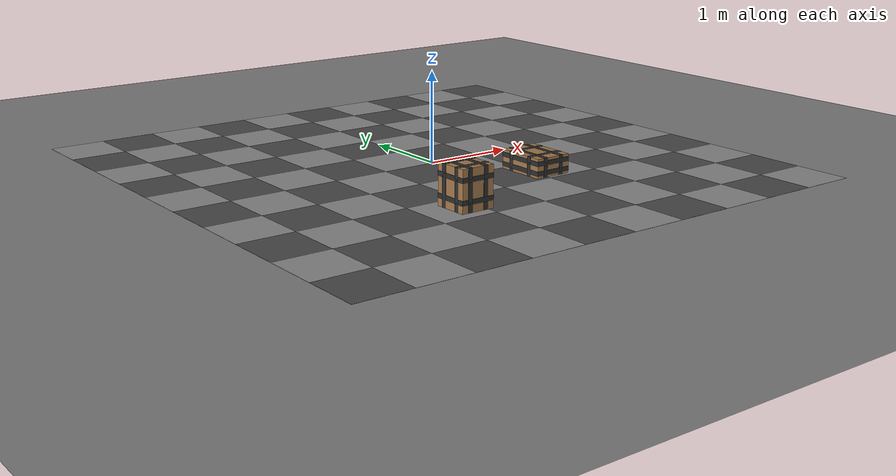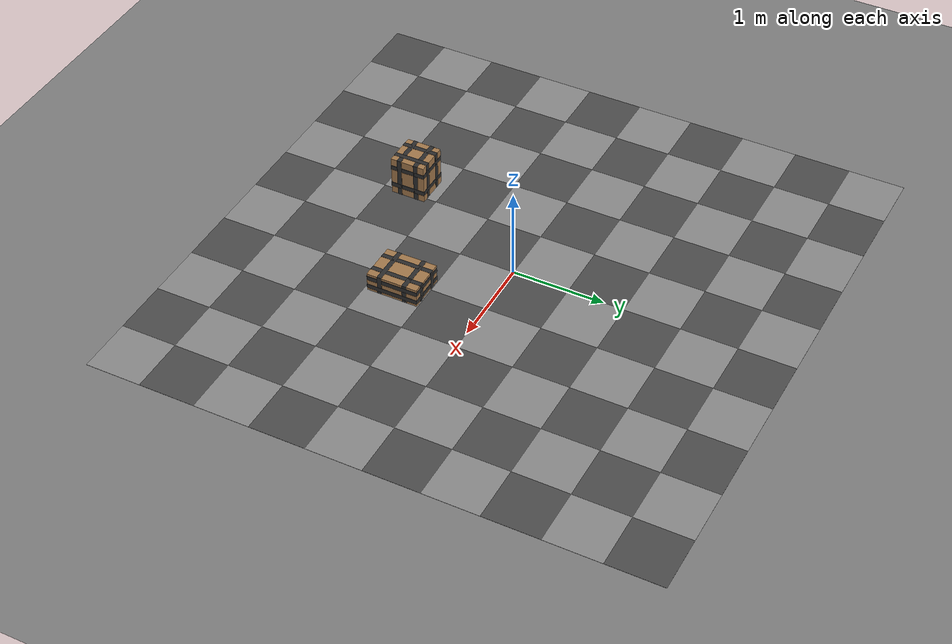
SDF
<sdf version="1.9">
 <world name="ecps295_lowbox_s21_monitor">
  <model name="ground_plane">
   <static>true</static>
   <link name="link">
    <collision name="collision">
     <geometry><plane><normal>0 0 1</normal><size>50 50</size></plane></geometry>
    </collision>
    <visual name="visual">
     <geometry><plane><normal>0 0 1</normal><size>50 50</size></plane></geometry>
     <material><ambient>0.5 0.5 0.5 1</ambient><diffuse>0.5 0.5 0.5 1</diffuse></material>
    </visual>
   </link>
  </model>
  <model name="eva_mat">
   <static>true</static>
   <link name="link">
    <visual name="t0_0">
     <pose>-2.745 -2.745 0.001 0 0 0</pose>
     <geometry><box><size>0.61 0.61 0.002</size></box></geometry>
     <material><ambient>0.3 0.3 0.3 1</ambient><diffuse>0.3 0.3 0.3 1</diffuse></material>
    </visual>
    <visual name="t0_1">
     <pose>-2.745 -2.135 0.001 0 0 0</pose>
     <geometry><box><size>0.61 0.61 0.002</size></box></geometry>
     <material><ambient>0.55 0.55 0.55 1</ambient><diffuse>0.55 0.55 0.55 1</diffuse></material>
    </visual>
    <visual name="t0_2">
     <pose>-2.745 -1.525 0.001 0 0 0</pose>
     <geometry><box><size>0.61 0.61 0.002</size></box></geometry>
     <material><ambient>0.3 0.3 0.3 1</ambient><diffuse>0.3 0.3 0.3 1</diffuse></material>
    </visual>
    <visual name="t0_3">
     <pose>-2.745 -0.915 0.001 0 0 0</pose>
     <geometry><box><size>0.61 0.61 0.002</size></box></geometry>
     <material><ambient>0.55 0.55 0.55 1</ambient><diffuse>0.55 0.55 0.55 1</diffuse></material>
    </visual>
    <visual name="t0_4">
     <pose>-2.745 -0.305 0.001 0 0 0</pose>
     <geometry><box><size>0.61 0.61 0.002</size></box></geometry>
     <material><ambient>0.3 0.3 0.3 1</ambient><diffuse>0.3 0.3 0.3 1</diffuse></material>
    </visual>
    <visual name="t0_5">
     <pose>-2.745 0.305 0.001 0 0 0</pose>
     <geometry><box><size>0.61 0.61 0.002</size></box></geometry>
     <material><ambient>0.55 0.55 0.55 1</ambient><diffuse>0.55 0.55 0.55 1</diffuse></material>
    </visual>
    <visual name="t0_6">
     <pose>-2.745 0.915 0.001 0 0 0</pose>
     <geometry><box><size>0.61 0.61 0.002</size></box></geometry>
     <material><ambient>0.3 0.3 0.3 1</ambient><diffuse>0.3 0.3 0.3 1</diffuse></material>
    </visual>
    <visual name="t0_7">
     <pose>-2.745 1.525 0.001 0 0 0</pose>
     <geometry><box><size>0.61 0.61 0.002</size></box></geometry>
     <material><ambient>0.55 0.55 0.55 1</ambient><diffuse>0.55 0.55 0.55 1</diffuse></material>
    </visual>
    <visual name="t0_8">
     <pose>-2.745 2.135 0.001 0 0 0</pose>
     <geometry><box><size>0.61 0.61 0.002</size></box></geometry>
     <material><ambient>0.3 0.3 0.3 1</ambient><diffuse>0.3 0.3 0.3 1</diffuse></material>
    </visual>
    <visual name="t0_9">
     <pose>-2.745 2.745 0.001 0 0 0</pose>
     <geometry><box><size>0.61 0.61 0.002</size></box></geometry>
     <material><ambient>0.55 0.55 0.55 1</ambient><diffuse>0.55 0.55 0.55 1</diffuse></material>
    </visual>
    <visual name="t1_0">
     <pose>-2.135 -2.745 0.001 0 0 0</pose>
     <geometry><box><size>0.61 0.61 0.002</size></box></geometry>
     <material><ambient>0.55 0.55 0.55 1</ambient><diffuse>0.55 0.55 0.55 1</diffuse></material>
    </visual>
    <visual name="t1_1">
     <pose>-2.135 -2.135 0.001 0 0 0</pose>
     <geometry><box><size>0.61 0.61 0.002</size></box></geometry>
     <material><ambient>0.3 0.3 0.3 1</ambient><diffuse>0.3 0.3 0.3 1</diffuse></material>
    </visual>
    <visual name="t1_2">
     <pose>-2.135 -1.525 0.001 0 0 0</pose>
     <geometry><box><size>0.61 0.61 0.002</size></box></geometry>
     <material><ambient>0.55 0.55 0.55 1</ambient><diffuse>0.55 0.55 0.55 1</diffuse></material>
    </visual>
    <visual name="t1_3">
     <pose>-2.135 -0.915 0.001 0 0 0</pose>
     <geometry><box><size>0.61 0.61 0.002</size></box></geometry>
     <material><ambient>0.3 0.3 0.3 1</ambient><diffuse>0.3 0.3 0.3 1</diffuse></material>
    </visual>
    <visual name="t1_4">
     <pose>-2.135 -0.305 0.001 0 0 0</pose>
     <geometry><box><size>0.61 0.61 0.002</size></box></geometry>
     <material><ambient>0.55 0.55 0.55 1</ambient><diffuse>0.55 0.55 0.55 1</diffuse></material>
    </visual>
    <visual name="t1_5">
     <pose>-2.135 0.305 0.001 0 0 0</pose>
     <geometry><box><size>0.61 0.61 0.002</size></box></geometry>
     <material><ambient>0.3 0.3 0.3 1</ambient><diffuse>0.3 0.3 0.3 1</diffuse></material>
    </visual>
    <visual name="t1_6">
     <pose>-2.135 0.915 0.001 0 0 0</pose>
     <geometry><box><size>0.61 0.61 0.002</size></box></geometry>
     <material><ambient>0.55 0.55 0.55 1</ambient><diffuse>0.55 0.55 0.55 1</diffuse></material>
    </visual>
    <visual name="t1_7">
     <pose>-2.135 1.525 0.001 0 0 0</pose>
     <geometry><box><size>0.61 0.61 0.002</size></box></geometry>
     <material><ambient>0.3 0.3 0.3 1</ambient><diffuse>0.3 0.3 0.3 1</diffuse></material>
    </visual>
    <visual name="t1_8">
     <pose>-2.135 2.135 0.001 0 0 0</pose>
     <geometry><box><size>0.61 0.61 0.002</size></box></geometry>
     <material><ambient>0.55 0.55 0.55 1</ambient><diffuse>0.55 0.55 0.55 1</diffuse></material>
    </visual>
    <visual name="t1_9">
     <pose>-2.135 2.745 0.001 0 0 0</pose>
     <geometry><box><size>0.61 0.61 0.002</size></box></geometry>
     <material><ambient>0.3 0.3 0.3 1</ambient><diffuse>0.3 0.3 0.3 1</diffuse></material>
    </visual>
    <visual name="t2_0">
     <pose>-1.525 -2.745 0.001 0 0 0</pose>
     <geometry><box><size>0.61 0.61 0.002</size></box></geometry>
     <material><ambient>0.3 0.3 0.3 1</ambient><diffuse>0.3 0.3 0.3 1</diffuse></material>
    </visual>
    <visual name="t2_1">
     <pose>-1.525 -2.135 0.001 0 0 0</pose>
     <geometry><box><size>0.61 0.61 0.002</size></box></geometry>
     <material><ambient>0.55 0.55 0.55 1</ambient><diffuse>0.55 0.55 0.55 1</diffuse></material>
    </visual>
    <visual name="t2_2">
     <pose>-1.525 -1.525 0.001 0 0 0</pose>
     <geometry><box><size>0.61 0.61 0.002</size></box></geometry>
     <material><ambient>0.3 0.3 0.3 1</ambient><diffuse>0.3 0.3 0.3 1</diffuse></material>
    </visual>
    <visual name="t2_3">
     <pose>-1.525 -0.915 0.001 0 0 0</pose>
     <geometry><box><size>0.61 0.61 0.002</size></box></geometry>
     <material><ambient>0.55 0.55 0.55 1</ambient><diffuse>0.55 0.55 0.55 1</diffuse></material>
    </visual>
    <visual name="t2_4">
     <pose>-1.525 -0.305 0.001 0 0 0</pose>
     <geometry><box><size>0.61 0.61 0.002</size></box></geometry>
     <material><ambient>0.3 0.3 0.3 1</ambient><diffuse>0.3 0.3 0.3 1</diffuse></material>
    </visual>
    <visual name="t2_5">
     <pose>-1.525 0.305 0.001 0 0 0</pose>
     <geometry><box><size>0.61 0.61 0.002</size></box></geometry>
     <material><ambient>0.55 0.55 0.55 1</ambient><diffuse>0.55 0.55 0.55 1</diffuse></material>
    </visual>
    <visual name="t2_6">
     <pose>-1.525 0.915 0.001 0 0 0</pose>
     <geometry><box><size>0.61 0.61 0.002</size></box></geometry>
     <material><ambient>0.3 0.3 0.3 1</ambient><diffuse>0.3 0.3 0.3 1</diffuse></material>
    </visual>
    <visual name="t2_7">
     <pose>-1.525 1.525 0.001 0 0 0</pose>
     <geometry><box><size>0.61 0.61 0.002</size></box></geometry>
     <material><ambient>0.55 0.55 0.55 1</ambient><diffuse>0.55 0.55 0.55 1</diffuse></material>
    </visual>
    <visual name="t2_8">
     <pose>-1.525 2.135 0.001 0 0 0</pose>
     <geometry><box><size>0.61 0.61 0.002</size></box></geometry>
     <material><ambient>0.3 0.3 0.3 1</ambient><diffuse>0.3 0.3 0.3 1</diffuse></material>
    </visual>
    <visual name="t2_9">
     <pose>-1.525 2.745 0.001 0 0 0</pose>
     <geometry><box><size>0.61 0.61 0.002</size></box></geometry>
     <material><ambient>0.55 0.55 0.55 1</ambient><diffuse>0.55 0.55 0.55 1</diffuse></material>
    </visual>
    <visual name="t3_0">
     <pose>-0.915 -2.745 0.001 0 0 0</pose>
     <geometry><box><size>0.61 0.61 0.002</size></box></geometry>
     <material><ambient>0.55 0.55 0.55 1</ambient><diffuse>0.55 0.55 0.55 1</diffuse></material>
    </visual>
    <visual name="t3_1">
     <pose>-0.915 -2.135 0.001 0 0 0</pose>
     <geometry><box><size>0.61 0.61 0.002</size></box></geometry>
     <material><ambient>0.3 0.3 0.3 1</ambient><diffuse>0.3 0.3 0.3 1</diffuse></material>
    </visual>
    <visual name="t3_2">
     <pose>-0.915 -1.525 0.001 0 0 0</pose>
     <geometry><box><size>0.61 0.61 0.002</size></box></geometry>
     <material><ambient>0.55 0.55 0.55 1</ambient><diffuse>0.55 0.55 0.55 1</diffuse></material>
    </visual>
    <visual name="t3_3">
     <pose>-0.915 -0.915 0.001 0 0 0</pose>
     <geometry><box><size>0.61 0.61 0.002</size></box></geometry>
     <material><ambient>0.3 0.3 0.3 1</ambient><diffuse>0.3 0.3 0.3 1</diffuse></material>
    </visual>
    <visual name="t3_4">
     <pose>-0.915 -0.305 0.001 0 0 0</pose>
     <geometry><box><size>0.61 0.61 0.002</size></box></geometry>
     <material><ambient>0.55 0.55 0.55 1</ambient><diffuse>0.55 0.55 0.55 1</diffuse></material>
    </visual>
    <visual name="t3_5">
     <pose>-0.915 0.305 0.001 0 0 0</pose>
     <geometry><box><size>0.61 0.61 0.002</size></box></geometry>
     <material><ambient>0.3 0.3 0.3 1</ambient><diffuse>0.3 0.3 0.3 1</diffuse></material>
    </visual>
    <visual name="t3_6">
     <pose>-0.915 0.915 0.001 0 0 0</pose>
     <geometry><box><size>0.61 0.61 0.002</size></box></geometry>
     <material><ambient>0.55 0.55 0.55 1</ambient><diffuse>0.55 0.55 0.55 1</diffuse></material>
    </visual>
    <visual name="t3_7">
     <pose>-0.915 1.525 0.001 0 0 0</pose>
     <geometry><box><size>0.61 0.61 0.002</size></box></geometry>
     <material><ambient>0.3 0.3 0.3 1</ambient><diffuse>0.3 0.3 0.3 1</diffuse></material>
    </visual>
    <visual name="t3_8">
     <pose>-0.915 2.135 0.001 0 0 0</pose>
     <geometry><box><size>0.61 0.61 0.002</size></box></geometry>
     <material><ambient>0.55 0.55 0.55 1</ambient><diffuse>0.55 0.55 0.55 1</diffuse></material>
    </visual>
    <visual name="t3_9">
     <pose>-0.915 2.745 0.001 0 0 0</pose>
     <geometry><box><size>0.61 0.61 0.002</size></box></geometry>
     <material><ambient>0.3 0.3 0.3 1</ambient><diffuse>0.3 0.3 0.3 1</diffuse></material>
    </visual>
    <visual name="t4_0">
     <pose>-0.305 -2.745 0.001 0 0 0</pose>
     <geometry><box><size>0.61 0.61 0.002</size></box></geometry>
     <material><ambient>0.3 0.3 0.3 1</ambient><diffuse>0.3 0.3 0.3 1</diffuse></material>
    </visual>
    <visual name="t4_1">
     <pose>-0.305 -2.135 0.001 0 0 0</pose>
     <geometry><box><size>0.61 0.61 0.002</size></box></geometry>
     <material><ambient>0.55 0.55 0.55 1</ambient><diffuse>0.55 0.55 0.55 1</diffuse></material>
    </visual>
    <visual name="t4_2">
     <pose>-0.305 -1.525 0.001 0 0 0</pose>
     <geometry><box><size>0.61 0.61 0.002</size></box></geometry>
     <material><ambient>0.3 0.3 0.3 1</ambient><diffuse>0.3 0.3 0.3 1</diffuse></material>
    </visual>
    <visual name="t4_3">
     <pose>-0.305 -0.915 0.001 0 0 0</pose>
     <geometry><box><size>0.61 0.61 0.002</size></box></geometry>
     <material><ambient>0.55 0.55 0.55 1</ambient><diffuse>0.55 0.55 0.55 1</diffuse></material>
    </visual>
    <visual name="t4_4">
     <pose>-0.305 -0.305 0.001 0 0 0</pose>
     <geometry><box><size>0.61 0.61 0.002</size></box></geometry>
     <material><ambient>0.3 0.3 0.3 1</ambient><diffuse>0.3 0.3 0.3 1</diffuse></material>
    </visual>
    <visual name="t4_5">
     <pose>-0.305 0.305 0.001 0 0 0</pose>
     <geometry><box><size>0.61 0.61 0.002</size></box></geometry>
     <material><ambient>0.55 0.55 0.55 1</ambient><diffuse>0.55 0.55 0.55 1</diffuse></material>
    </visual>
    <visual name="t4_6">
     <pose>-0.305 0.915 0.001 0 0 0</pose>
     <geometry><box><size>0.61 0.61 0.002</size></box></geometry>
     <material><ambient>0.3 0.3 0.3 1</ambient><diffuse>0.3 0.3 0.3 1</diffuse></material>
    </visual>
    <visual name="t4_7">
     <pose>-0.305 1.525 0.001 0 0 0</pose>
     <geometry><box><size>0.61 0.61 0.002</size></box></geometry>
     <material><ambient>0.55 0.55 0.55 1</ambient><diffuse>0.55 0.55 0.55 1</diffuse></material>
    </visual>
    <visual name="t4_8">
     <pose>-0.305 2.135 0.001 0 0 0</pose>
     <geometry><box><size>0.61 0.61 0.002</size></box></geometry>
     <material><ambient>0.3 0.3 0.3 1</ambient><diffuse>0.3 0.3 0.3 1</diffuse></material>
    </visual>
    <visual name="t4_9">
     <pose>-0.305 2.745 0.001 0 0 0</pose>
     <geometry><box><size>0.61 0.61 0.002</size></box></geometry>
     <material><ambient>0.55 0.55 0.55 1</ambient><diffuse>0.55 0.55 0.55 1</diffuse></material>
    </visual>
    <visual name="t5_0">
     <pose>0.305 -2.745 0.001 0 0 0</pose>
     <geometry><box><size>0.61 0.61 0.002</size></box></geometry>
     <material><ambient>0.55 0.55 0.55 1</ambient><diffuse>0.55 0.55 0.55 1</diffuse></material>
    </visual>
    <visual name="t5_1">
     <pose>0.305 -2.135 0.001 0 0 0</pose>
     <geometry><box><size>0.61 0.61 0.002</size></box></geometry>
     <material><ambient>0.3 0.3 0.3 1</ambient><diffuse>0.3 0.3 0.3 1</diffuse></material>
    </visual>
    <visual name="t5_2">
     <pose>0.305 -1.525 0.001 0 0 0</pose>
     <geometry><box><size>0.61 0.61 0.002</size></box></geometry>
     <material><ambient>0.55 0.55 0.55 1</ambient><diffuse>0.55 0.55 0.55 1</diffuse></material>
    </visual>
    <visual name="t5_3">
     <pose>0.305 -0.915 0.001 0 0 0</pose>
     <geometry><box><size>0.61 0.61 0.002</size></box></geometry>
     <material><ambient>0.3 0.3 0.3 1</ambient><diffuse>0.3 0.3 0.3 1</diffuse></material>
    </visual>
    <visual name="t5_4">
     <pose>0.305 -0.305 0.001 0 0 0</pose>
     <geometry><box><size>0.61 0.61 0.002</size></box></geometry>
     <material><ambient>0.55 0.55 0.55 1</ambient><diffuse>0.55 0.55 0.55 1</diffuse></material>
    </visual>
    <visual name="t5_5">
     <pose>0.305 0.305 0.001 0 0 0</pose>
     <geometry><box><size>0.61 0.61 0.002</size></box></geometry>
     <material><ambient>0.3 0.3 0.3 1</ambient><diffuse>0.3 0.3 0.3 1</diffuse></material>
    </visual>
    <visual name="t5_6">
     <pose>0.305 0.915 0.001 0 0 0</pose>
     <geometry><box><size>0.61 0.61 0.002</size></box></geometry>
     <material><ambient>0.55 0.55 0.55 1</ambient><diffuse>0.55 0.55 0.55 1</diffuse></material>
    </visual>
    <visual name="t5_7">
     <pose>0.305 1.525 0.001 0 0 0</pose>
     <geometry><box><size>0.61 0.61 0.002</size></box></geometry>
     <material><ambient>0.3 0.3 0.3 1</ambient><diffuse>0.3 0.3 0.3 1</diffuse></material>
    </visual>
    <visual name="t5_8">
     <pose>0.305 2.135 0.001 0 0 0</pose>
     <geometry><box><size>0.61 0.61 0.002</size></box></geometry>
     <material><ambient>0.55 0.55 0.55 1</ambient><diffuse>0.55 0.55 0.55 1</diffuse></material>
    </visual>
    <visual name="t5_9">
     <pose>0.305 2.745 0.001 0 0 0</pose>
     <geometry><box><size>0.61 0.61 0.002</size></box></geometry>
     <material><ambient>0.3 0.3 0.3 1</ambient><diffuse>0.3 0.3 0.3 1</diffuse></material>
    </visual>
    <visual name="t6_0">
     <pose>0.915 -2.745 0.001 0 0 0</pose>
     <geometry><box><size>0.61 0.61 0.002</size></box></geometry>
     <material><ambient>0.3 0.3 0.3 1</ambient><diffuse>0.3 0.3 0.3 1</diffuse></material>
    </visual>
    <visual name="t6_1">
     <pose>0.915 -2.135 0.001 0 0 0</pose>
     <geometry><box><size>0.61 0.61 0.002</size></box></geometry>
     <material><ambient>0.55 0.55 0.55 1</ambient><diffuse>0.55 0.55 0.55 1</diffuse></material>
    </visual>
    <visual name="t6_2">
     <pose>0.915 -1.525 0.001 0 0 0</pose>
     <geometry><box><size>0.61 0.61 0.002</size></box></geometry>
     <material><ambient>0.3 0.3 0.3 1</ambient><diffuse>0.3 0.3 0.3 1</diffuse></material>
    </visual>
    <visual name="t6_3">
     <pose>0.915 -0.915 0.001 0 0 0</pose>
     <geometry><box><size>0.61 0.61 0.002</size></box></geometry>
     <material><ambient>0.55 0.55 0.55 1</ambient><diffuse>0.55 0.55 0.55 1</diffuse></material>
    </visual>
    <visual name="t6_4">
     <pose>0.915 -0.305 0.001 0 0 0</pose>
     <geometry><box><size>0.61 0.61 0.002</size></box></geometry>
     <material><ambient>0.3 0.3 0.3 1</ambient><diffuse>0.3 0.3 0.3 1</diffuse></material>
    </visual>
    <visual name="t6_5">
     <pose>0.915 0.305 0.001 0 0 0</pose>
     <geometry><box><size>0.61 0.61 0.002</size></box></geometry>
     <material><ambient>0.55 0.55 0.55 1</ambient><diffuse>0.55 0.55 0.55 1</diffuse></material>
    </visual>
    <visual name="t6_6">
     <pose>0.915 0.915 0.001 0 0 0</pose>
     <geometry><box><size>0.61 0.61 0.002</size></box></geometry>
     <material><ambient>0.3 0.3 0.3 1</ambient><diffuse>0.3 0.3 0.3 1</diffuse></material>
    </visual>
    <visual name="t6_7">
     <pose>0.915 1.525 0.001 0 0 0</pose>
     <geometry><box><size>0.61 0.61 0.002</size></box></geometry>
     <material><ambient>0.55 0.55 0.55 1</ambient><diffuse>0.55 0.55 0.55 1</diffuse></material>
    </visual>
    <visual name="t6_8">
     <pose>0.915 2.135 0.001 0 0 0</pose>
     <geometry><box><size>0.61 0.61 0.002</size></box></geometry>
     <material><ambient>0.3 0.3 0.3 1</ambient><diffuse>0.3 0.3 0.3 1</diffuse></material>
    </visual>
    <visual name="t6_9">
     <pose>0.915 2.745 0.001 0 0 0</pose>
     <geometry><box><size>0.61 0.61 0.002</size></box></geometry>
     <material><ambient>0.55 0.55 0.55 1</ambient><diffuse>0.55 0.55 0.55 1</diffuse></material>
    </visual>
    <visual name="t7_0">
     <pose>1.525 -2.745 0.001 0 0 0</pose>
     <geometry><box><size>0.61 0.61 0.002</size></box></geometry>
     <material><ambient>0.55 0.55 0.55 1</ambient><diffuse>0.55 0.55 0.55 1</diffuse></material>
    </visual>
    <visual name="t7_1">
     <pose>1.525 -2.135 0.001 0 0 0</pose>
     <geometry><box><size>0.61 0.61 0.002</size></box></geometry>
     <material><ambient>0.3 0.3 0.3 1</ambient><diffuse>0.3 0.3 0.3 1</diffuse></material>
    </visual>
    <visual name="t7_2">
     <pose>1.525 -1.525 0.001 0 0 0</pose>
     <geometry><box><size>0.61 0.61 0.002</size></box></geometry>
     <material><ambient>0.55 0.55 0.55 1</ambient><diffuse>0.55 0.55 0.55 1</diffuse></material>
    </visual>
    <visual name="t7_3">
     <pose>1.525 -0.915 0.001 0 0 0</pose>
     <geometry><box><size>0.61 0.61 0.002</size></box></geometry>
     <material><ambient>0.3 0.3 0.3 1</ambient><diffuse>0.3 0.3 0.3 1</diffuse></material>
    </visual>
    <visual name="t7_4">
     <pose>1.525 -0.305 0.001 0 0 0</pose>
     <geometry><box><size>0.61 0.61 0.002</size></box></geometry>
     <material><ambient>0.55 0.55 0.55 1</ambient><diffuse>0.55 0.55 0.55 1</diffuse></material>
    </visual>
    <visual name="t7_5">
     <pose>1.525 0.305 0.001 0 0 0</pose>
     <geometry><box><size>0.61 0.61 0.002</size></box></geometry>
     <material><ambient>0.3 0.3 0.3 1</ambient><diffuse>0.3 0.3 0.3 1</diffuse></material>
    </visual>
    <visual name="t7_6">
     <pose>1.525 0.915 0.001 0 0 0</pose>
     <geometry><box><size>0.61 0.61 0.002</size></box></geometry>
     <material><ambient>0.55 0.55 0.55 1</ambient><diffuse>0.55 0.55 0.55 1</diffuse></material>
    </visual>
    <visual name="t7_7">
     <pose>1.525 1.525 0.001 0 0 0</pose>
     <geometry><box><size>0.61 0.61 0.002</size></box></geometry>
     <material><ambient>0.3 0.3 0.3 1</ambient><diffuse>0.3 0.3 0.3 1</diffuse></material>
    </visual>
    <visual name="t7_8">
     <pose>1.525 2.135 0.001 0 0 0</pose>
     <geometry><box><size>0.61 0.61 0.002</size></box></geometry>
     <material><ambient>0.55 0.55 0.55 1</ambient><diffuse>0.55 0.55 0.55 1</diffuse></material>
    </visual>
    <visual name="t7_9">
     <pose>1.525 2.745 0.001 0 0 0</pose>
     <geometry><box><size>0.61 0.61 0.002</size></box></geometry>
     <material><ambient>0.3 0.3 0.3 1</ambient><diffuse>0.3 0.3 0.3 1</diffuse></material>
    </visual>
    <visual name="t8_0">
     <pose>2.135 -2.745 0.001 0 0 0</pose>
     <geometry><box><size>0.61 0.61 0.002</size></box></geometry>
     <material><ambient>0.3 0.3 0.3 1</ambient><diffuse>0.3 0.3 0.3 1</diffuse></material>
    </visual>
    <visual name="t8_1">
     <pose>2.135 -2.135 0.001 0 0 0</pose>
     <geometry><box><size>0.61 0.61 0.002</size></box></geometry>
     <material><ambient>0.55 0.55 0.55 1</ambient><diffuse>0.55 0.55 0.55 1</diffuse></material>
    </visual>
    <visual name="t8_2">
     <pose>2.135 -1.525 0.001 0 0 0</pose>
     <geometry><box><size>0.61 0.61 0.002</size></box></geometry>
     <material><ambient>0.3 0.3 0.3 1</ambient><diffuse>0.3 0.3 0.3 1</diffuse></material>
    </visual>
    <visual name="t8_3">
     <pose>2.135 -0.915 0.001 0 0 0</pose>
     <geometry><box><size>0.61 0.61 0.002</size></box></geometry>
     <material><ambient>0.55 0.55 0.55 1</ambient><diffuse>0.55 0.55 0.55 1</diffuse></material>
    </visual>
    <visual name="t8_4">
     <pose>2.135 -0.305 0.001 0 0 0</pose>
     <geometry><box><size>0.61 0.61 0.002</size></box></geometry>
     <material><ambient>0.3 0.3 0.3 1</ambient><diffuse>0.3 0.3 0.3 1</diffuse></material>
    </visual>
    <visual name="t8_5">
     <pose>2.135 0.305 0.001 0 0 0</pose>
     <geometry><box><size>0.61 0.61 0.002</size></box></geometry>
     <material><ambient>0.55 0.55 0.55 1</ambient><diffuse>0.55 0.55 0.55 1</diffuse></material>
    </visual>
    <visual name="t8_6">
     <pose>2.135 0.915 0.001 0 0 0</pose>
     <geometry><box><size>0.61 0.61 0.002</size></box></geometry>
     <material><ambient>0.3 0.3 0.3 1</ambient><diffuse>0.3 0.3 0.3 1</diffuse></material>
    </visual>
    <visual name="t8_7">
     <pose>2.135 1.525 0.001 0 0 0</pose>
     <geometry><box><size>0.61 0.61 0.002</size></box></geometry>
     <material><ambient>0.55 0.55 0.55 1</ambient><diffuse>0.55 0.55 0.55 1</diffuse></material>
    </visual>
    <visual name="t8_8">
     <pose>2.135 2.135 0.001 0 0 0</pose>
     <geometry><box><size>0.61 0.61 0.002</size></box></geometry>
     <material><ambient>0.3 0.3 0.3 1</ambient><diffuse>0.3 0.3 0.3 1</diffuse></material>
    </visual>
    <visual name="t8_9">
     <pose>2.135 2.745 0.001 0 0 0</pose>
     <geometry><box><size>0.61 0.61 0.002</size></box></geometry>
     <material><ambient>0.55 0.55 0.55 1</ambient><diffuse>0.55 0.55 0.55 1</diffuse></material>
    </visual>
    <visual name="t9_0">
     <pose>2.745 -2.745 0.001 0 0 0</pose>
     <geometry><box><size>0.61 0.61 0.002</size></box></geometry>
     <material><ambient>0.55 0.55 0.55 1</ambient><diffuse>0.55 0.55 0.55 1</diffuse></material>
    </visual>
    <visual name="t9_1">
     <pose>2.745 -2.135 0.001 0 0 0</pose>
     <geometry><box><size>0.61 0.61 0.002</size></box></geometry>
     <material><ambient>0.3 0.3 0.3 1</ambient><diffuse>0.3 0.3 0.3 1</diffuse></material>
    </visual>
    <visual name="t9_2">
     <pose>2.745 -1.525 0.001 0 0 0</pose>
     <geometry><box><size>0.61 0.61 0.002</size></box></geometry>
     <material><ambient>0.55 0.55 0.55 1</ambient><diffuse>0.55 0.55 0.55 1</diffuse></material>
    </visual>
    <visual name="t9_3">
     <pose>2.745 -0.915 0.001 0 0 0</pose>
     <geometry><box><size>0.61 0.61 0.002</size></box></geometry>
     <material><ambient>0.3 0.3 0.3 1</ambient><diffuse>0.3 0.3 0.3 1</diffuse></material>
    </visual>
    <visual name="t9_4">
     <pose>2.745 -0.305 0.001 0 0 0</pose>
     <geometry><box><size>0.61 0.61 0.002</size></box></geometry>
     <material><ambient>0.55 0.55 0.55 1</ambient><diffuse>0.55 0.55 0.55 1</diffuse></material>
    </visual>
    <visual name="t9_5">
     <pose>2.745 0.305 0.001 0 0 0</pose>
     <geometry><box><size>0.61 0.61 0.002</size></box></geometry>
     <material><ambient>0.3 0.3 0.3 1</ambient><diffuse>0.3 0.3 0.3 1</diffuse></material>
    </visual>
    <visual name="t9_6">
     <pose>2.745 0.915 0.001 0 0 0</pose>
     <geometry><box><size>0.61 0.61 0.002</size></box></geometry>
     <material><ambient>0.55 0.55 0.55 1</ambient><diffuse>0.55 0.55 0.55 1</diffuse></material>
    </visual>
    <visual name="t9_7">
     <pose>2.745 1.525 0.001 0 0 0</pose>
     <geometry><box><size>0.61 0.61 0.002</size></box></geometry>
     <material><ambient>0.3 0.3 0.3 1</ambient><diffuse>0.3 0.3 0.3 1</diffuse></material>
    </visual>
    <visual name="t9_8">
     <pose>2.745 2.135 0.001 0 0 0</pose>
     <geometry><box><size>0.61 0.61 0.002</size></box></geometry>
     <material><ambient>0.55 0.55 0.55 1</ambient><diffuse>0.55 0.55 0.55 1</diffuse></material>
    </visual>
    <visual name="t9_9">
     <pose>2.745 2.745 0.001 0 0 0</pose>
     <geometry><box><size>0.61 0.61 0.002</size></box></geometry>
     <material><ambient>0.3 0.3 0.3 1</ambient><diffuse>0.3 0.3 0.3 1</diffuse></material>
    </visual>
   </link>
  </model>
  <model name="lb0">
   <static>true</static>
   <pose>-0.74 -1.52 0.218 0 0 0</pose>
   <link name="link">
    <collision name="c"><geometry><box><size>0.37 0.38 0.44</size></box></geometry></collision>
    <visual name="v">
     <geometry><box><size>0.37 0.38 0.44</size></box></geometry>
     <material><ambient>0.65 0.48 0.30 1</ambient><diffuse>0.65 0.48 0.30 1</diffuse></material>
    </visual>
    <visual name="tape_ring0">
     <pose>0.000 0.000 -0.110 0 0 0</pose>
     <geometry><box><size>0.374 0.384 0.050</size></box></geometry>
     <material><ambient>0.18 0.18 0.18 1</ambient><diffuse>0.18 0.18 0.18 1</diffuse></material>
    </visual>
    <visual name="tape_bx0">
     <pose>-0.092 0.000 0.000 0 0 0</pose>
     <geometry><box><size>0.050 0.384 0.444</size></box></geometry>
     <material><ambient>0.18 0.18 0.18 1</ambient><diffuse>0.18 0.18 0.18 1</diffuse></material>
    </visual>
    <visual name="tape_by0">
     <pose>0.000 -0.095 0.000 0 0 0</pose>
     <geometry><box><size>0.374 0.050 0.444</size></box></geometry>
     <material><ambient>0.18 0.18 0.18 1</ambient><diffuse>0.18 0.18 0.18 1</diffuse></material>
    </visual>
    <visual name="tape_ring1">
     <pose>0.000 0.000 0.110 0 0 0</pose>
     <geometry><box><size>0.374 0.384 0.050</size></box></geometry>
     <material><ambient>0.18 0.18 0.18 1</ambient><diffuse>0.18 0.18 0.18 1</diffuse></material>
    </visual>
    <visual name="tape_bx1">
     <pose>0.092 0.000 0.000 0 0 0</pose>
     <geometry><box><size>0.050 0.384 0.444</size></box></geometry>
     <material><ambient>0.18 0.18 0.18 1</ambient><diffuse>0.18 0.18 0.18 1</diffuse></material>
    </visual>
    <visual name="tape_by1">
     <pose>0.000 0.095 0.000 0 0 0</pose>
     <geometry><box><size>0.374 0.050 0.444</size></box></geometry>
     <material><ambient>0.18 0.18 0.18 1</ambient><diffuse>0.18 0.18 0.18 1</diffuse></material>
    </visual>
   </link>
  </model>
  <model name="lb2">
   <static>true</static>
   <pose>0.68 -0.9 0.105 0 0 0</pose>
   <link name="link">
    <collision name="c"><geometry><box><size>0.42 0.56 0.21</size></box></geometry></collision>
    <visual name="v">
     <geometry><box><size>0.42 0.56 0.21</size></box></geometry>
     <material><ambient>0.65 0.48 0.30 1</ambient><diffuse>0.65 0.48 0.30 1</diffuse></material>
    </visual>
    <visual name="tape_ring0">
     <pose>0.000 0.000 -0.052 0 0 0</pose>
     <geometry><box><size>0.424 0.564 0.050</size></box></geometry>
     <material><ambient>0.18 0.18 0.18 1</ambient><diffuse>0.18 0.18 0.18 1</diffuse></material>
    </visual>
    <visual name="tape_bx0">
     <pose>-0.105 0.000 0.000 0 0 0</pose>
     <geometry><box><size>0.050 0.564 0.214</size></box></geometry>
     <material><ambient>0.18 0.18 0.18 1</ambient><diffuse>0.18 0.18 0.18 1</diffuse></material>
    </visual>
    <visual name="tape_by0">
     <pose>0.000 -0.140 0.000 0 0 0</pose>
     <geometry><box><size>0.424 0.050 0.214</size></box></geometry>
     <material><ambient>0.18 0.18 0.18 1</ambient><diffuse>0.18 0.18 0.18 1</diffuse></material>
    </visual>
    <visual name="tape_ring1">
     <pose>0.000 0.000 0.052 0 0 0</pose>
     <geometry><box><size>0.424 0.564 0.050</size></box></geometry>
     <material><ambient>0.18 0.18 0.18 1</ambient><diffuse>0.18 0.18 0.18 1</diffuse></material>
    </visual>
    <visual name="tape_bx1">
     <pose>0.105 0.000 0.000 0 0 0</pose>
     <geometry><box><size>0.050 0.564 0.214</size></box></geometry>
     <material><ambient>0.18 0.18 0.18 1</ambient><diffuse>0.18 0.18 0.18 1</diffuse></material>
    </visual>
    <visual name="tape_by1">
     <pose>0.000 0.140 0.000 0 0 0</pose>
     <geometry><box><size>0.424 0.050 0.214</size></box></geometry>
     <material><ambient>0.18 0.18 0.18 1</ambient><diffuse>0.18 0.18 0.18 1</diffuse></material>
    </visual>
   </link>
  </model>
 </world>
</sdf>
